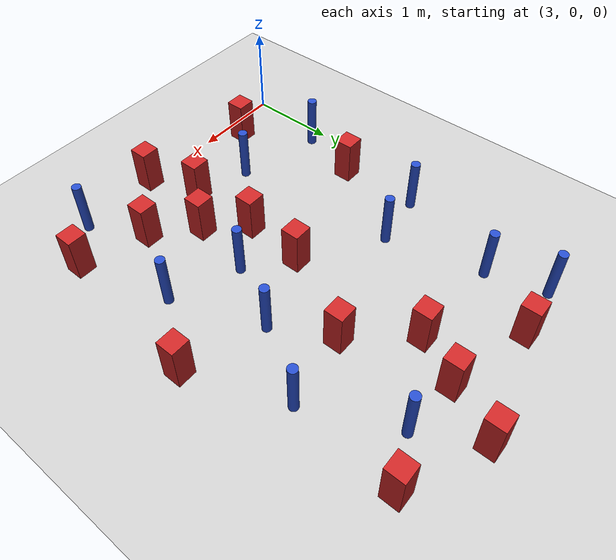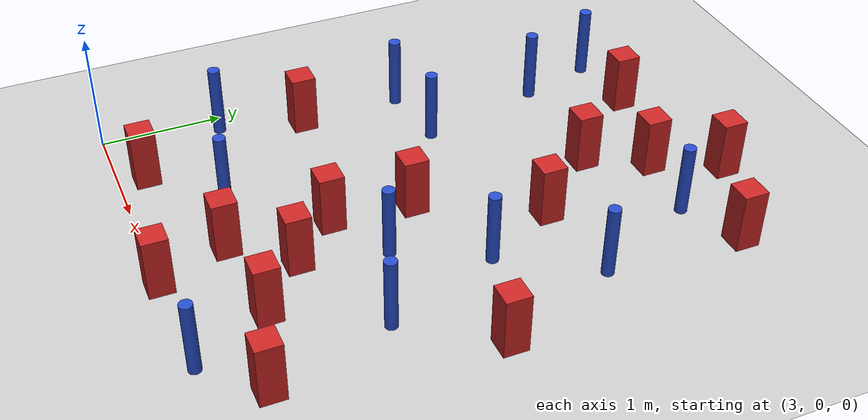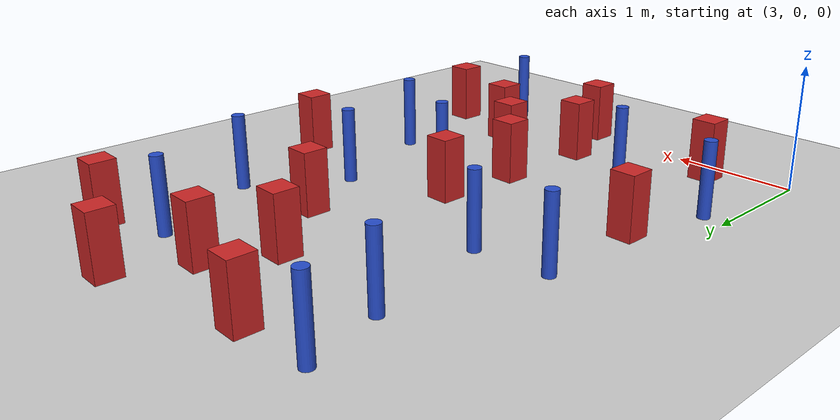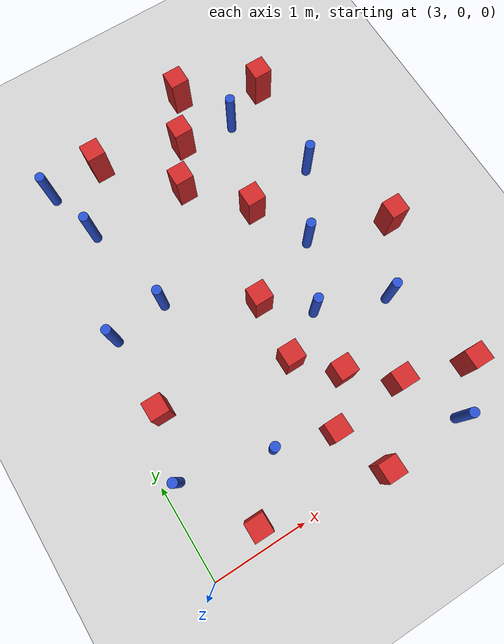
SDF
<sdf version="1.6">
 <world name="default">
  <model name="ground_plane">
   <static>1</static>
   <link name="link">
    <collision name="collision">
     <geometry><plane><normal>0 0 1</normal><size>100 100</size></plane></geometry>
     <surface><friction><ode><mu>100</mu><mu2>50</mu2></ode></friction></surface>
    </collision>
    <visual name="visual">
     <cast_shadows>0</cast_shadows>
     <geometry><plane><normal>0 0 1</normal><size>100 100</size></plane></geometry>
     <material>
      <ambient>1.0 1.0 1.0 1.0</ambient>
      <diffuse>0.8 0.8 0.8 1.0</diffuse>
      <specular>0.01 0.01 0.01 1.000000</specular>
     </material>
    </visual>
   </link>
  </model>
  <model name="pole_obstacle4">
   <static>true</static>
   <pose>6.03136823341 3.07508010178 -9.47619616065e-06 5.49618799738e-07 2.36310414051e-07 -1.55090534805e-07</pose>
   <link name="link">
    <pose>0 0 0.3 0 -0 0</pose>
    <inertial>
     <mass>1</mass>
     <inertia><ixx>0.145833</ixx><ixy>0</ixy><ixz>0</ixz><iyy>0.145833</iyy><iyz>0</iyz><izz>0.125</izz></inertia>
    </inertial>
    <collision name="collision">
     <geometry><cylinder><radius>0.05</radius><length>.6</length></cylinder></geometry>
    </collision>
    <visual name="visual">
     <geometry><cylinder><radius>0.05</radius><length>.6</length></cylinder></geometry>
     <material>
      <script><name>Gazebo/Blue</name><uri>file://media/materials/scripts/gazebo.material</uri></script>
     </material>
    </visual>
   </link>
  </model>
  <model name="square_post_obstacle9">
   <static>true</static>
   <pose>5.49992778663 0.636190954281 -6.11067671241e-07 -5.50515727128e-06 -8.79689657224e-07 2.37013304536e-05</pose>
   <link name="link">
    <pose>0 0 0.25 0 -0 0</pose>
    <inertial>
     <mass>100</mass>
     <inertia>
      <ixx>0.166667</ixx>
      <ixy>0</ixy>
      <ixz>0</ixz>
      <iyy>0.166667</iyy>
      <iyz>0</iyz>
      <izz>0.166667</izz>
     </inertia>
    </inertial>
    <collision name="collision"><geometry><box><size>.2 .2 .5</size></box></geometry></collision>
    <visual name="visual">
     <geometry><box><size>.2 .2 .5</size></box></geometry>
     <material>
      <script><name>Gazebo/Red</name><uri>file://media/materials/scripts/gazebo.material</uri></script>
     </material>
    </visual>
   </link>
  </model>
  <model name="square_post_obstacle21">
   <static>true</static>
   <pose>4.76312795238 3.55337894419 -6.11067671241e-07 -5.50515727128e-06 -8.79689657224e-07 2.37013304536e-05</pose>
   <link name="link">
    <pose>0 0 0.25 0 -0 0</pose>
    <inertial>
     <mass>100</mass>
     <inertia>
      <ixx>0.166667</ixx>
      <ixy>0</ixy>
      <ixz>0</ixz>
      <iyy>0.166667</iyy>
      <iyz>0</iyz>
      <izz>0.166667</izz>
     </inertia>
    </inertial>
    <collision name="collision"><geometry><box><size>.2 .2 .5</size></box></geometry></collision>
    <visual name="visual">
     <geometry><box><size>.2 .2 .5</size></box></geometry>
     <material>
      <script><name>Gazebo/Red</name><uri>file://media/materials/scripts/gazebo.material</uri></script>
     </material>
    </visual>
   </link>
  </model>
  <model name="pole_obstacle17">
   <static>true</static>
   <pose>4.11376594674 0.73467394082 -9.47619616065e-06 5.49618799737e-07 2.36310414061e-07 -1.550905348e-07</pose>
   <link name="link">
    <pose>0 0 0.3 0 -0 0</pose>
    <inertial>
     <mass>1</mass>
     <inertia><ixx>0.145833</ixx><ixy>0</ixy><ixz>0</ixz><iyy>0.145833</iyy><iyz>0</iyz><izz>0.125</izz></inertia>
    </inertial>
    <collision name="collision">
     <geometry><cylinder><radius>0.05</radius><length>.6</length></cylinder></geometry>
    </collision>
    <visual name="visual">
     <geometry><cylinder><radius>0.05</radius><length>.6</length></cylinder></geometry>
     <material>
      <script><name>Gazebo/Blue</name><uri>file://media/materials/scripts/gazebo.material</uri></script>
     </material>
    </visual>
   </link>
  </model>
  <model name="square_post_obstacle26">
   <static>true</static>
   <pose>6.20949902412 0.426637564775 -6.11067671241e-07 -5.50515727128e-06 -8.79689657224e-07 2.37013304536e-05</pose>
   <link name="link">
    <pose>0 0 0.25 0 -0 0</pose>
    <inertial>
     <mass>100</mass>
     <inertia>
      <ixx>0.166667</ixx>
      <ixy>0</ixy>
      <ixz>0</ixz>
      <iyy>0.166667</iyy>
      <iyz>0</iyz>
      <izz>0.166667</izz>
     </inertia>
    </inertial>
    <collision name="collision"><geometry><box><size>.2 .2 .5</size></box></geometry></collision>
    <visual name="visual">
     <geometry><box><size>.2 .2 .5</size></box></geometry>
     <material>
      <script><name>Gazebo/Red</name><uri>file://media/materials/scripts/gazebo.material</uri></script>
     </material>
    </visual>
   </link>
  </model>
  <model name="pole_obstacle22">
   <static>true</static>
   <pose>5.20940424091 1.68204271585 -9.47619616065e-06 5.49618799738e-07 2.36310414071e-07 -1.55090534796e-07</pose>
   <link name="link">
    <pose>0 0 0.3 0 -0 0</pose>
    <inertial>
     <mass>1</mass>
     <inertia><ixx>0.145833</ixx><ixy>0</ixy><ixz>0</ixz><iyy>0.145833</iyy><iyz>0</iyz><izz>0.125</izz></inertia>
    </inertial>
    <collision name="collision">
     <geometry><cylinder><radius>0.05</radius><length>.6</length></cylinder></geometry>
    </collision>
    <visual name="visual">
     <geometry><cylinder><radius>0.05</radius><length>.6</length></cylinder></geometry>
     <material>
      <script><name>Gazebo/Blue</name><uri>file://media/materials/scripts/gazebo.material</uri></script>
     </material>
    </visual>
   </link>
  </model>
  <model name="square_post_obstacle32">
   <static>true</static>
   <pose>6.10313526223 4.17710607402 -6.11067671241e-07 -5.50515727128e-06 -8.79689657224e-07 2.37013304536e-05</pose>
   <link name="link">
    <pose>0 0 0.25 0 -0 0</pose>
    <inertial>
     <mass>100</mass>
     <inertia>
      <ixx>0.166667</ixx>
      <ixy>0</ixy>
      <ixz>0</ixz>
      <iyy>0.166667</iyy>
      <iyz>0</iyz>
      <izz>0.166667</izz>
     </inertia>
    </inertial>
    <collision name="collision"><geometry><box><size>.2 .2 .5</size></box></geometry></collision>
    <visual name="visual">
     <geometry><box><size>.2 .2 .5</size></box></geometry>
     <material>
      <script><name>Gazebo/Red</name><uri>file://media/materials/scripts/gazebo.material</uri></script>
     </material>
    </visual>
   </link>
  </model>
  <model name="square_post_obstacle38">
   <static>true</static>
   <pose>6.42329930709 2.0872438362 -6.11067671241e-07 -5.50515727128e-06 -8.79689657224e-07 2.37013304536e-05</pose>
   <link name="link">
    <pose>0 0 0.25 0 -0 0</pose>
    <inertial>
     <mass>100</mass>
     <inertia>
      <ixx>0.166667</ixx>
      <ixy>0</ixy>
      <ixz>0</ixz>
      <iyy>0.166667</iyy>
      <iyz>0</iyz>
      <izz>0.166667</izz>
     </inertia>
    </inertial>
    <collision name="collision"><geometry><box><size>.2 .2 .5</size></box></geometry></collision>
    <visual name="visual">
     <geometry><box><size>.2 .2 .5</size></box></geometry>
     <material>
      <script><name>Gazebo/Red</name><uri>file://media/materials/scripts/gazebo.material</uri></script>
     </material>
    </visual>
   </link>
  </model>
  <model name="square_post_obstacle45">
   <static>true</static>
   <pose>4.77510436136 2.04874685066 -6.11067671241e-07 -5.50515727128e-06 -8.79689657224e-07 2.37013304536e-05</pose>
   <link name="link">
    <pose>0 0 0.25 0 -0 0</pose>
    <inertial>
     <mass>100</mass>
     <inertia>
      <ixx>0.166667</ixx>
      <ixy>0</ixy>
      <ixz>0</ixz>
      <iyy>0.166667</iyy>
      <iyz>0</iyz>
      <izz>0.166667</izz>
     </inertia>
    </inertial>
    <collision name="collision"><geometry><box><size>.2 .2 .5</size></box></geometry></collision>
    <visual name="visual">
     <geometry><box><size>.2 .2 .5</size></box></geometry>
     <material>
      <script><name>Gazebo/Red</name><uri>file://media/materials/scripts/gazebo.material</uri></script>
     </material>
    </visual>
   </link>
  </model>
  <model name="pole_obstacle53">
   <static>true</static>
   <pose>5.57172280352 2.35855380298 -9.47619616065e-06 5.49618799738e-07 2.36310414051e-07 -1.55090534805e-07</pose>
   <link name="link">
    <pose>0 0 0.3 0 -0 0</pose>
    <inertial>
     <mass>1</mass>
     <inertia><ixx>0.145833</ixx><ixy>0</ixy><ixz>0</ixz><iyy>0.145833</iyy><iyz>0</iyz><izz>0.125</izz></inertia>
    </inertial>
    <collision name="collision">
     <geometry><cylinder><radius>0.05</radius><length>.6</length></cylinder></geometry>
    </collision>
    <visual name="visual">
     <geometry><cylinder><radius>0.05</radius><length>.6</length></cylinder></geometry>
     <material>
      <script><name>Gazebo/Blue</name><uri>file://media/materials/scripts/gazebo.material</uri></script>
     </material>
    </visual>
   </link>
  </model>
  <model name="pole_obstacle56">
   <static>true</static>
   <pose>3.94006318743 2.56893522679 -9.47619616065e-06 5.49618799737e-07 2.36310414051e-07 -1.55090534807e-07</pose>
   <link name="link">
    <pose>0 0 0.3 0 -0 0</pose>
    <inertial>
     <mass>1</mass>
     <inertia><ixx>0.145833</ixx><ixy>0</ixy><ixz>0</ixz><iyy>0.145833</iyy><iyz>0</iyz><izz>0.125</izz></inertia>
    </inertial>
    <collision name="collision">
     <geometry><cylinder><radius>0.05</radius><length>.6</length></cylinder></geometry>
    </collision>
    <visual name="visual">
     <geometry><cylinder><radius>0.05</radius><length>.6</length></cylinder></geometry>
     <material>
      <script><name>Gazebo/Blue</name><uri>file://media/materials/scripts/gazebo.material</uri></script>
     </material>
    </visual>
   </link>
  </model>
  <model name="pole_obstacle70">
   <static>true</static>
   <pose>5.80971211072 0.0287064600149 -9.47619616065e-06 5.49618799737e-07 2.36310414077e-07 -1.55090534792e-07</pose>
   <link name="link">
    <pose>0 0 0.3 0 -0 0</pose>
    <inertial>
     <mass>1</mass>
     <inertia><ixx>0.145833</ixx><ixy>0</ixy><ixz>0</ixz><iyy>0.145833</iyy><iyz>0</iyz><izz>0.125</izz></inertia>
    </inertial>
    <collision name="collision">
     <geometry><cylinder><radius>0.05</radius><length>.6</length></cylinder></geometry>
    </collision>
    <visual name="visual">
     <geometry><cylinder><radius>0.05</radius><length>.6</length></cylinder></geometry>
     <material>
      <script><name>Gazebo/Blue</name><uri>file://media/materials/scripts/gazebo.material</uri></script>
     </material>
    </visual>
   </link>
  </model>
  <model name="square_post_obstacle76">
   <static>true</static>
   <pose>5.02520661884 4.02187210519 -6.11067671241e-07 -5.50515727128e-06 -8.79689657224e-07 2.37013304536e-05</pose>
   <link name="link">
    <pose>0 0 0.25 0 -0 0</pose>
    <inertial>
     <mass>100</mass>
     <inertia>
      <ixx>0.166667</ixx>
      <ixy>0</ixy>
      <ixz>0</ixz>
      <iyy>0.166667</iyy>
      <iyz>0</iyz>
      <izz>0.166667</izz>
     </inertia>
    </inertial>
    <collision name="collision"><geometry><box><size>.2 .2 .5</size></box></geometry></collision>
    <visual name="visual">
     <geometry><box><size>.2 .2 .5</size></box></geometry>
     <material>
      <script><name>Gazebo/Red</name><uri>file://media/materials/scripts/gazebo.material</uri></script>
     </material>
    </visual>
   </link>
  </model>
  <model name="pole_obstacle78">
   <static>true</static>
   <pose>3.3444445971 2.48638642715 -9.47619616065e-06 5.49618799737e-07 2.36310414051e-07 -1.55090534807e-07</pose>
   <link name="link">
    <pose>0 0 0.3 0 -0 0</pose>
    <inertial>
     <mass>1</mass>
     <inertia><ixx>0.145833</ixx><ixy>0</ixy><ixz>0</ixz><iyy>0.145833</iyy><iyz>0</iyz><izz>0.125</izz></inertia>
    </inertial>
    <collision name="collision">
     <geometry><cylinder><radius>0.05</radius><length>.6</length></cylinder></geometry>
    </collision>
    <visual name="visual">
     <geometry><cylinder><radius>0.05</radius><length>.6</length></cylinder></geometry>
     <material>
      <script><name>Gazebo/Blue</name><uri>file://media/materials/scripts/gazebo.material</uri></script>
     </material>
    </visual>
   </link>
  </model>
  <model name="square_post_obstacle86">
   <static>true</static>
   <pose>4.12705564856 4.26437114528 -6.11067671241e-07 -5.50515727128e-06 -8.79689657224e-07 2.37013304536e-05</pose>
   <link name="link">
    <pose>0 0 0.25 0 -0 0</pose>
    <inertial>
     <mass>100</mass>
     <inertia>
      <ixx>0.166667</ixx>
      <ixy>0</ixy>
      <ixz>0</ixz>
      <iyy>0.166667</iyy>
      <iyz>0</iyz>
      <izz>0.166667</izz>
     </inertia>
    </inertial>
    <collision name="collision"><geometry><box><size>.2 .2 .5</size></box></geometry></collision>
    <visual name="visual">
     <geometry><box><size>.2 .2 .5</size></box></geometry>
     <material>
      <script><name>Gazebo/Red</name><uri>file://media/materials/scripts/gazebo.material</uri></script>
     </material>
    </visual>
   </link>
  </model>
  <model name="pole_obstacle98">
   <static>true</static>
   <pose>3.17798759059 0.954318729513 -9.47619616065e-06 5.49618799738e-07 2.36310414064e-07 -1.55090534798e-07</pose>
   <link name="link">
    <pose>0 0 0.3 0 -0 0</pose>
    <inertial>
     <mass>1</mass>
     <inertia><ixx>0.145833</ixx><ixy>0</ixy><ixz>0</ixz><iyy>0.145833</iyy><iyz>0</iyz><izz>0.125</izz></inertia>
    </inertial>
    <collision name="collision">
     <geometry><cylinder><radius>0.05</radius><length>.6</length></cylinder></geometry>
    </collision>
    <visual name="visual">
     <geometry><cylinder><radius>0.05</radius><length>.6</length></cylinder></geometry>
     <material>
      <script><name>Gazebo/Blue</name><uri>file://media/materials/scripts/gazebo.material</uri></script>
     </material>
    </visual>
   </link>
  </model>
  <model name="pole_obstacle99">
   <static>true</static>
   <pose>5.93183227462 1.40588617037 -9.47619616065e-06 5.49618799738e-07 2.36310414071e-07 -1.55090534796e-07</pose>
   <link name="link">
    <pose>0 0 0.3 0 -0 0</pose>
    <inertial>
     <mass>1</mass>
     <inertia><ixx>0.145833</ixx><ixy>0</ixy><ixz>0</ixz><iyy>0.145833</iyy><iyz>0</iyz><izz>0.125</izz></inertia>
    </inertial>
    <collision name="collision">
     <geometry><cylinder><radius>0.05</radius><length>.6</length></cylinder></geometry>
    </collision>
    <visual name="visual">
     <geometry><cylinder><radius>0.05</radius><length>.6</length></cylinder></geometry>
     <material>
      <script><name>Gazebo/Blue</name><uri>file://media/materials/scripts/gazebo.material</uri></script>
     </material>
    </visual>
   </link>
  </model>
  <model name="square_post_obstacle95">
   <static>true</static>
   <pose>5.28995313992 4.54875250621 -6.11067671241e-07 -5.50515727128e-06 -8.79689657224e-07 2.37013304536e-05</pose>
   <link name="link">
    <pose>0 0 0.25 0 -0 0</pose>
    <inertial>
     <mass>100</mass>
     <inertia>
      <ixx>0.166667</ixx>
      <ixy>0</ixy>
      <ixz>0</ixz>
      <iyy>0.166667</iyy>
      <iyz>0</iyz>
      <izz>0.166667</izz>
     </inertia>
    </inertial>
    <collision name="collision"><geometry><box><size>.2 .2 .5</size></box></geometry></collision>
    <visual name="visual">
     <geometry><box><size>.2 .2 .5</size></box></geometry>
     <material>
      <script><name>Gazebo/Red</name><uri>file://media/materials/scripts/gazebo.material</uri></script>
     </material>
    </visual>
   </link>
  </model>
  <model name="square_post_obstacle106">
   <static>true</static>
   <pose>4.72211842145 1.38666754498 -6.11067671241e-07 -5.50515727128e-06 -8.79689657224e-07 2.37013304536e-05</pose>
   <link name="link">
    <pose>0 0 0.25 0 -0 0</pose>
    <inertial>
     <mass>100</mass>
     <inertia>
      <ixx>0.166667</ixx>
      <ixy>0</ixy>
      <ixz>0</ixz>
      <iyy>0.166667</iyy>
      <iyz>0</iyz>
      <izz>0.166667</izz>
     </inertia>
    </inertial>
    <collision name="collision"><geometry><box><size>.2 .2 .5</size></box></geometry></collision>
    <visual name="visual">
     <geometry><box><size>.2 .2 .5</size></box></geometry>
     <material>
      <script><name>Gazebo/Red</name><uri>file://media/materials/scripts/gazebo.material</uri></script>
     </material>
    </visual>
   </link>
  </model>
  <model name="square_post_obstacle111">
   <static>true</static>
   <pose>4.91434129175 0.00712274639897 -6.11067671241e-07 -5.50515727128e-06 -8.79689657224e-07 2.37013304536e-05</pose>
   <link name="link">
    <pose>0 0 0.25 0 -0 0</pose>
    <inertial>
     <mass>100</mass>
     <inertia>
      <ixx>0.166667</ixx>
      <ixy>0</ixy>
      <ixz>0</ixz>
      <iyy>0.166667</iyy>
      <iyz>0</iyz>
      <izz>0.166667</izz>
     </inertia>
    </inertial>
    <collision name="collision"><geometry><box><size>.2 .2 .5</size></box></geometry></collision>
    <visual name="visual">
     <geometry><box><size>.2 .2 .5</size></box></geometry>
     <material>
      <script><name>Gazebo/Red</name><uri>file://media/materials/scripts/gazebo.material</uri></script>
     </material>
    </visual>
   </link>
  </model>
  <model name="square_post_obstacle114">
   <static>true</static>
   <pose>5.07233482611 1.00871836087 -6.11067671241e-07 -5.50515727128e-06 -8.79689657224e-07 2.37013304536e-05</pose>
   <link name="link">
    <pose>0 0 0.25 0 -0 0</pose>
    <inertial>
     <mass>100</mass>
     <inertia>
      <ixx>0.166667</ixx>
      <ixy>0</ixy>
      <ixz>0</ixz>
      <iyy>0.166667</iyy>
      <iyz>0</iyz>
      <izz>0.166667</izz>
     </inertia>
    </inertial>
    <collision name="collision"><geometry><box><size>.2 .2 .5</size></box></geometry></collision>
    <visual name="visual">
     <geometry><box><size>.2 .2 .5</size></box></geometry>
     <material>
      <script><name>Gazebo/Red</name><uri>file://media/materials/scripts/gazebo.material</uri></script>
     </material>
    </visual>
   </link>
  </model>
  <model name="square_post_obstacle117">
   <static>true</static>
   <pose>5.26643442196 2.96693600663 -6.11067671241e-07 -5.50515727128e-06 -8.79689657224e-07 2.37013304536e-05</pose>
   <link name="link">
    <pose>0 0 0.25 0 -0 0</pose>
    <inertial>
     <mass>100</mass>
     <inertia>
      <ixx>0.166667</ixx>
      <ixy>0</ixy>
      <ixz>0</ixz>
      <iyy>0.166667</iyy>
      <iyz>0</iyz>
      <izz>0.166667</izz>
     </inertia>
    </inertial>
    <collision name="collision"><geometry><box><size>.2 .2 .5</size></box></geometry></collision>
    <visual name="visual">
     <geometry><box><size>.2 .2 .5</size></box></geometry>
     <material>
      <script><name>Gazebo/Red</name><uri>file://media/materials/scripts/gazebo.material</uri></script>
     </material>
    </visual>
   </link>
  </model>
  <model name="pole_obstacle148">
   <static>true</static>
   <pose>3.70387304529 3.60541671973 -9.47619616065e-06 5.49618799737e-07 2.36310414051e-07 -1.55090534807e-07</pose>
   <link name="link">
    <pose>0 0 0.3 0 -0 0</pose>
    <inertial>
     <mass>1</mass>
     <inertia><ixx>0.145833</ixx><ixy>0</ixy><ixz>0</ixz><iyy>0.145833</iyy><iyz>0</iyz><izz>0.125</izz></inertia>
    </inertial>
    <collision name="collision">
     <geometry><cylinder><radius>0.05</radius><length>.6</length></cylinder></geometry>
    </collision>
    <visual name="visual">
     <geometry><cylinder><radius>0.05</radius><length>.6</length></cylinder></geometry>
     <material>
      <script><name>Gazebo/Blue</name><uri>file://media/materials/scripts/gazebo.material</uri></script>
     </material>
    </visual>
   </link>
  </model>
  <model name="pole_obstacle159">
   <static>true</static>
   <pose>5.61471248972 3.96145432065 -9.47619616065e-06 5.49618799737e-07 2.36310414054e-07 -1.55090534804e-07</pose>
   <link name="link">
    <pose>0 0 0.3 0 -0 0</pose>
    <inertial>
     <mass>1</mass>
     <inertia><ixx>0.145833</ixx><ixy>0</ixy><ixz>0</ixz><iyy>0.145833</iyy><iyz>0</iyz><izz>0.125</izz></inertia>
    </inertial>
    <collision name="collision">
     <geometry><cylinder><radius>0.05</radius><length>.6</length></cylinder></geometry>
    </collision>
    <visual name="visual">
     <geometry><cylinder><radius>0.05</radius><length>.6</length></cylinder></geometry>
     <material>
      <script><name>Gazebo/Blue</name><uri>file://media/materials/scripts/gazebo.material</uri></script>
     </material>
    </visual>
   </link>
  </model>
  <model name="pole_obstacle186">
   <static>true</static>
   <pose>3.53318036778 4.21708177242 -9.47619616065e-06 5.49618799738e-07 2.3631041406e-07 -1.55090534801e-07</pose>
   <link name="link">
    <pose>0 0 0.3 0 -0 0</pose>
    <inertial>
     <mass>1</mass>
     <inertia><ixx>0.145833</ixx><ixy>0</ixy><ixz>0</ixz><iyy>0.145833</iyy><iyz>0</iyz><izz>0.125</izz></inertia>
    </inertial>
    <collision name="collision">
     <geometry><cylinder><radius>0.05</radius><length>.6</length></cylinder></geometry>
    </collision>
    <visual name="visual">
     <geometry><cylinder><radius>0.05</radius><length>.6</length></cylinder></geometry>
     <material>
      <script><name>Gazebo/Blue</name><uri>file://media/materials/scripts/gazebo.material</uri></script>
     </material>
    </visual>
   </link>
  </model>
  <model name="square_post_obstacle194">
   <static>true</static>
   <pose>3.37116826534 1.62962599675 -6.11067671241e-07 -5.50515727128e-06 -8.79689657224e-07 2.37013304536e-05</pose>
   <link name="link">
    <pose>0 0 0.25 0 -0 0</pose>
    <inertial>
     <mass>100</mass>
     <inertia>
      <ixx>0.166667</ixx>
      <ixy>0</ixy>
      <ixz>0</ixz>
      <iyy>0.166667</iyy>
      <iyz>0</iyz>
      <izz>0.166667</izz>
     </inertia>
    </inertial>
    <collision name="collision"><geometry><box><size>.2 .2 .5</size></box></geometry></collision>
    <visual name="visual">
     <geometry><box><size>.2 .2 .5</size></box></geometry>
     <material>
      <script><name>Gazebo/Red</name><uri>file://media/materials/scripts/gazebo.material</uri></script>
     </material>
    </visual>
   </link>
  </model>
  <model name="square_post_obstacle203">
   <static>true</static>
   <pose>4.70283428825 0.568044727516 -6.11067671241e-07 -5.50515727128e-06 -8.79689657224e-07 2.37013304536e-05</pose>
   <link name="link">
    <pose>0 0 0.25 0 -0 0</pose>
    <inertial>
     <mass>100</mass>
     <inertia>
      <ixx>0.166667</ixx>
      <ixy>0</ixy>
      <ixz>0</ixz>
      <iyy>0.166667</iyy>
      <iyz>0</iyz>
      <izz>0.166667</izz>
     </inertia>
    </inertial>
    <collision name="collision"><geometry><box><size>.2 .2 .5</size></box></geometry></collision>
    <visual name="visual">
     <geometry><box><size>.2 .2 .5</size></box></geometry>
     <material>
      <script><name>Gazebo/Red</name><uri>file://media/materials/scripts/gazebo.material</uri></script>
     </material>
    </visual>
   </link>
  </model>
  <model name="square_post_obstacle215">
   <static>true</static>
   <pose>3.62159223949 0.223504542064 -6.11067671241e-07 -5.50515727128e-06 -8.79689657224e-07 2.37013304536e-05</pose>
   <link name="link">
    <pose>0 0 0.25 0 -0 0</pose>
    <inertial>
     <mass>100</mass>
     <inertia>
      <ixx>0.166667</ixx>
      <ixy>0</ixy>
      <ixz>0</ixz>
      <iyy>0.166667</iyy>
      <iyz>0</iyz>
      <izz>0.166667</izz>
     </inertia>
    </inertial>
    <collision name="collision"><geometry><box><size>.2 .2 .5</size></box></geometry></collision>
    <visual name="visual">
     <geometry><box><size>.2 .2 .5</size></box></geometry>
     <material>
      <script><name>Gazebo/Red</name><uri>file://media/materials/scripts/gazebo.material</uri></script>
     </material>
    </visual>
   </link>
  </model>
 </world>
</sdf>
